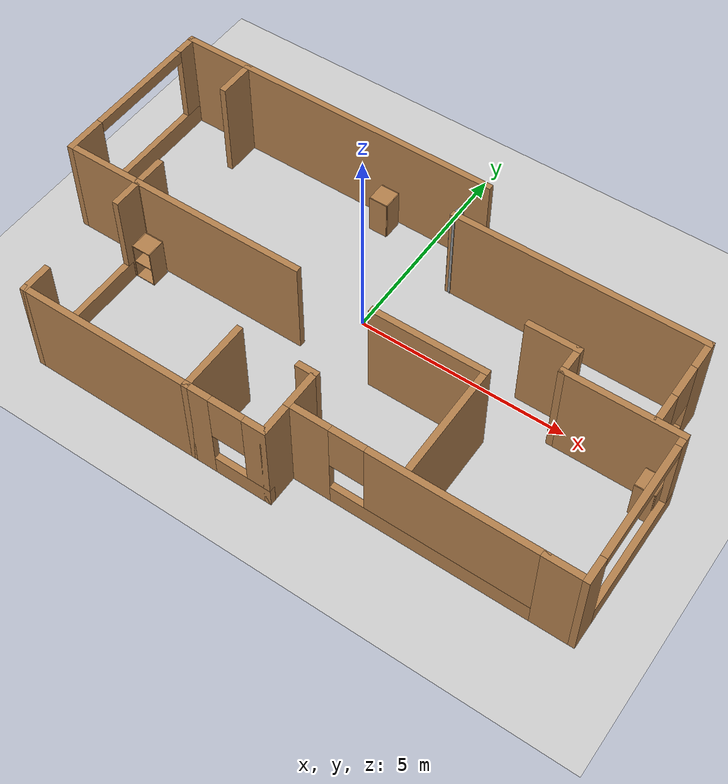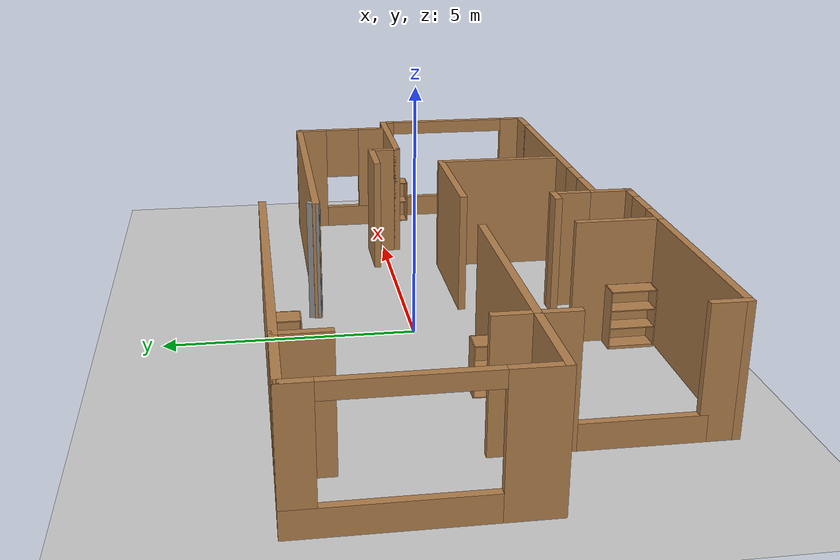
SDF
<sdf version="1.6">
 <world name="default">
  <light name="sun" type="directional">
   <pose>0 0 10 0 -0 0</pose>
   <diffuse>0.8 0.8 0.8 1</diffuse>
   <specular>0.1 0.1 0.1 1</specular>
   <attenuation>
    <range>1000</range>
    <constant>0.9</constant>
    <linear>0.01</linear>
    <quadratic>0.001</quadratic>
   </attenuation>
   <direction>-0.5 0.5 -1</direction>
  </light>
  <model name="ground_plane">
   <static>1</static>
   <link name="link">
    <collision name="collision">
     <geometry><plane><normal>0 0 1</normal><size>100 100</size></plane></geometry>
     <surface><friction><ode><mu>100</mu><mu2>50</mu2></ode></friction></surface>
    </collision>
    <visual name="visual">
     <cast_shadows>0</cast_shadows>
     <geometry><plane><normal>0 0 1</normal><size>100 100</size></plane></geometry>
     <material>
      <script><uri>file://media/materials/scripts/gazebo.material</uri><name>Gazebo/Grey</name></script>
     </material>
    </visual>
   </link>
  </model>
  <gravity>0 0 -9.8</gravity>
  <magnetic_field>6e-06 2.3e-05 -4.2e-05</magnetic_field>
  <atmosphere type="adiabatic"/>
  <physics name="default_physics" default="0" type="ode">
   <max_step_size>0.001</max_step_size>
   <real_time_factor>1</real_time_factor>
   <real_time_update_rate>1000</real_time_update_rate>
  </physics>
  <scene><ambient>0.4 0.4 0.4 1</ambient><background>0.7 0.7 0.7 1</background><shadows>1</shadows></scene>
  <spherical_coordinates>
   <surface_model>EARTH_WGS84</surface_model>
   <latitude_deg>0</latitude_deg>
   <longitude_deg>0</longitude_deg>
   <elevation>0</elevation>
   <heading_deg>0</heading_deg>
  </spherical_coordinates>
  <model name="room_small">
   <pose>0.347421 -0.866246 0 0 -0 0</pose>
   <link name="Wall_0">
    <collision name="Wall_0_Collision">
     <geometry><box><size>4.25 0.15 2.5</size></box></geometry>
     <pose>0 0 1.25 0 -0 0</pose>
    </collision>
    <visual name="Wall_0_Visual">
     <pose>0 0 1.25 0 -0 0</pose>
     <geometry><box><size>4.25 0.15 2.5</size></box></geometry>
     <material>
      <script><uri>file://media/materials/scripts/gazebo.material</uri><name>Gazebo/Wood</name></script>
      <ambient>1 1 1 1</ambient>
     </material>
    </visual>
    <pose>-3.21568 -0.309416 0 0 -0 0</pose>
   </link>
   <link name="Wall_11">
    <collision name="Wall_11_Collision">
     <geometry><box><size>1 0.15 2.5</size></box></geometry>
     <pose>0 0 1.25 0 -0 0</pose>
    </collision>
    <visual name="Wall_11_Visual">
     <pose>0 0 1.25 0 -0 0</pose>
     <geometry><box><size>1 0.15 2.5</size></box></geometry>
     <material>
      <script><uri>file://media/materials/scripts/gazebo.material</uri><name>Gazebo/Wood</name></script>
      <ambient>1 1 1 1</ambient>
     </material>
    </visual>
    <pose>6.69067 -3.04058 0 0 -0 0</pose>
   </link>
   <link name="Wall_12">
    <pose>7.11568 -1.24058 0 0 -0 1.5708</pose>
    <visual name="Wall_12_Visual_0">
     <pose>-1.56813 0 1.25 0 -0 0</pose>
     <geometry><box><size>0.613747 0.15 2.5</size></box></geometry>
     <material>
      <script><uri>file://media/materials/scripts/gazebo.material</uri><name>Gazebo/Wood</name></script>
      <ambient>1 1 1 1</ambient>
     </material>
    </visual>
    <collision name="Wall_12_Collision_0">
     <geometry><box><size>0.613747 0.15 2.5</size></box></geometry>
     <pose>-1.56813 0 1.25 0 -0 0</pose>
    </collision>
    <visual name="Wall_12_Visual_1">
     <pose>0.306873 0 0.25 0 -0 0</pose>
     <geometry><box><size>3.13625 0.15 0.5</size></box></geometry>
     <material>
      <script><uri>file://media/materials/scripts/gazebo.material</uri><name>Gazebo/Wood</name></script>
      <ambient>1 1 1 1</ambient>
     </material>
    </visual>
    <collision name="Wall_12_Collision_1">
     <geometry><box><size>3.13625 0.15 0.5</size></box></geometry>
     <pose>0.306873 0 0.25 0 -0 0</pose>
    </collision>
    <visual name="Wall_12_Visual_2">
     <pose>1.70687 0 1.5 0 -0 0</pose>
     <geometry><box><size>0.336253 0.15 2</size></box></geometry>
     <material>
      <script><uri>file://media/materials/scripts/gazebo.material</uri><name>Gazebo/Wood</name></script>
      <ambient>1 1 1 1</ambient>
     </material>
    </visual>
    <collision name="Wall_12_Collision_2">
     <geometry><box><size>0.336253 0.15 2</size></box></geometry>
     <pose>1.70687 0 1.5 0 -0 0</pose>
    </collision>
    <visual name="Wall_12_Visual_3">
     <pose>0.138747 0 2.35 0 -0 0</pose>
     <geometry><box><size>2.8 0.15 0.3</size></box></geometry>
     <material>
      <script><uri>file://media/materials/scripts/gazebo.material</uri><name>Gazebo/Wood</name></script>
      <ambient>1 1 1 1</ambient>
     </material>
    </visual>
    <collision name="Wall_12_Collision_3">
     <geometry><box><size>2.8 0.15 0.3</size></box></geometry>
     <pose>0.138747 0 2.35 0 -0 0</pose>
    </collision>
   </link>
   <link name="Wall_13">
    <collision name="Wall_13_Collision">
     <geometry><box><size>2.75 0.15 2.5</size></box></geometry>
     <pose>0 0 1.25 0 -0 0</pose>
    </collision>
    <visual name="Wall_13_Visual">
     <pose>0 0 1.25 0 -0 0</pose>
     <geometry><box><size>2.75 0.15 2.5</size></box></geometry>
     <material>
      <script><uri>file://media/materials/scripts/gazebo.material</uri><name>Gazebo/Wood</name></script>
      <ambient>1 1 1 1</ambient>
     </material>
    </visual>
    <pose>5.81567 0.559416 0 0 -0 3.14159</pose>
   </link>
   <link name="Wall_14">
    <collision name="Wall_14_Collision">
     <geometry><box><size>0.75 0.15 2.5</size></box></geometry>
     <pose>0 0 1.25 0 -0 0</pose>
    </collision>
    <visual name="Wall_14_Visual">
     <pose>0 0 1.25 0 -0 0</pose>
     <geometry><box><size>0.75 0.15 2.5</size></box></geometry>
     <material>
      <script><uri>file://media/materials/scripts/gazebo.material</uri><name>Gazebo/Wood</name></script>
      <ambient>1 1 1 1</ambient>
     </material>
    </visual>
    <pose>4.51567 0.859416 0 0 -0 1.5708</pose>
   </link>
   <link name="Wall_15">
    <collision name="Wall_15_Collision">
     <geometry><box><size>1.25 0.15 2.5</size></box></geometry>
     <pose>0 0 1.25 0 -0 0</pose>
    </collision>
    <visual name="Wall_15_Visual">
     <pose>0 0 1.25 0 -0 0</pose>
     <geometry><box><size>1.25 0.15 2.5</size></box></geometry>
     <material>
      <script><uri>file://media/materials/scripts/gazebo.material</uri><name>Gazebo/Wood</name></script>
      <ambient>1 1 1 1</ambient>
     </material>
    </visual>
    <pose>3.96568 1.15942 0 0 -0 3.14159</pose>
   </link>
   <link name="Wall_2">
    <collision name="Wall_2_Collision">
     <geometry><box><size>1.5 0.15 2.5</size></box></geometry>
     <pose>0 0 1.25 0 -0 0</pose>
    </collision>
    <visual name="Wall_2_Visual">
     <pose>0 0 1.25 0 -0 0</pose>
     <geometry><box><size>1.5 0.15 2.5</size></box></geometry>
     <material>
      <script><uri>file://media/materials/scripts/gazebo.material</uri><name>Gazebo/Wood</name></script>
      <ambient>1 1 1 1</ambient>
     </material>
    </visual>
    <pose>-5.28432 -0.30347 0 0 0 -1.5708</pose>
   </link>
   <link name="Wall_20">
    <pose>-0.259325 -3.79058 0 0 -0 0</pose>
    <visual name="Wall_20_Visual_0">
     <pose>-0.679948 0 1.25 0 -0 0</pose>
     <geometry><box><size>0.640104 0.15 2.5</size></box></geometry>
     <material>
      <script><uri>file://media/materials/scripts/gazebo.material</uri><name>Gazebo/Wood</name></script>
      <ambient>1 1 1 1</ambient>
     </material>
    </visual>
    <collision name="Wall_20_Collision_0">
     <geometry><box><size>0.640104 0.15 2.5</size></box></geometry>
     <pose>-0.679948 0 1.25 0 -0 0</pose>
    </collision>
    <visual name="Wall_20_Visual_1">
     <pose>0.320052 0 0.25 0 -0 0</pose>
     <geometry><box><size>1.3599 0.15 0.5</size></box></geometry>
     <material>
      <script><uri>file://media/materials/scripts/gazebo.material</uri><name>Gazebo/Wood</name></script>
      <ambient>1 1 1 1</ambient>
     </material>
    </visual>
    <collision name="Wall_20_Collision_1">
     <geometry><box><size>1.3599 0.15 0.5</size></box></geometry>
     <pose>0.320052 0 0.25 0 -0 0</pose>
    </collision>
    <visual name="Wall_20_Visual_2">
     <pose>0.720052 0 1.5 0 -0 0</pose>
     <geometry><box><size>0.559896 0.15 2</size></box></geometry>
     <material>
      <script><uri>file://media/materials/scripts/gazebo.material</uri><name>Gazebo/Wood</name></script>
      <ambient>1 1 1 1</ambient>
     </material>
    </visual>
    <collision name="Wall_20_Collision_2">
     <geometry><box><size>0.559896 0.15 2</size></box></geometry>
     <pose>0.720052 0 1.5 0 -0 0</pose>
    </collision>
    <visual name="Wall_20_Visual_3">
     <pose>0.040104 0 1.9 0 -0 0</pose>
     <geometry><box><size>0.8 0.15 1.2</size></box></geometry>
     <material>
      <script><uri>file://media/materials/scripts/gazebo.material</uri><name>Gazebo/Wood</name></script>
      <ambient>1 1 1 1</ambient>
     </material>
    </visual>
    <collision name="Wall_20_Collision_3">
     <geometry><box><size>0.8 0.15 1.2</size></box></geometry>
     <pose>0.040104 0 1.9 0 -0 0</pose>
    </collision>
   </link>
   <link name="Wall_21">
    <collision name="Wall_21_Collision">
     <geometry><box><size>0.9 0.15 2.5</size></box></geometry>
     <pose>0 0 1.25 0 -0 0</pose>
    </collision>
    <visual name="Wall_21_Visual">
     <pose>0 0 1.25 0 -0 0</pose>
     <geometry><box><size>0.9 0.15 2.5</size></box></geometry>
     <material>
      <script><uri>file://media/materials/scripts/gazebo.material</uri><name>Gazebo/Wood</name></script>
      <ambient>1 1 1 1</ambient>
     </material>
    </visual>
    <pose>0.665675 -3.41558 0 0 -0 1.5708</pose>
   </link>
   <link name="Wall_23">
    <pose>-5.28432 -2.08453 0 0 0 -1.5708</pose>
    <visual name="Wall_23_Visual_0">
     <pose>0 0 0.25 0 -0 0</pose>
     <geometry><box><size>2.36211 0.15 0.5</size></box></geometry>
     <material>
      <script><uri>file://media/materials/scripts/gazebo.material</uri><name>Gazebo/Wood</name></script>
      <ambient>1 1 1 1</ambient>
     </material>
    </visual>
    <collision name="Wall_23_Collision_0">
     <geometry><box><size>2.36211 0.15 0.5</size></box></geometry>
     <pose>0 0 0.25 0 -0 0</pose>
    </collision>
   </link>
   <link name="Wall_25">
    <collision name="Wall_25_Collision">
     <geometry><box><size>2.75 0.15 2.5</size></box></geometry>
     <pose>0 0 1.25 0 -0 0</pose>
    </collision>
    <visual name="Wall_25_Visual">
     <pose>0 0 1.25 0 -0 0</pose>
     <geometry><box><size>2.75 0.15 2.5</size></box></geometry>
     <material>
      <script><uri>file://media/materials/scripts/gazebo.material</uri><name>Gazebo/Wood</name></script>
      <ambient>1 1 1 1</ambient>
     </material>
    </visual>
    <pose>2.02026 -0.299258 0 0 -0 3.14159</pose>
   </link>
   <link name="Wall_27">
    <collision name="Wall_27_Collision">
     <geometry><box><size>2 0.15 2.5</size></box></geometry>
     <pose>0 0 1.25 0 -0 0</pose>
    </collision>
    <visual name="Wall_27_Visual">
     <pose>0 0 1.25 0 -0 0</pose>
     <geometry><box><size>2 0.15 2.5</size></box></geometry>
     <material>
      <script><uri>file://media/materials/scripts/gazebo.material</uri><name>Gazebo/Wood</name></script>
      <ambient>1 1 1 1</ambient>
     </material>
    </visual>
    <pose>-6.19067 -0.309416 0 0 -0 3.14159</pose>
   </link>
   <link name="Wall_28">
    <pose>-7.11568 1.74058 0 0 -0 1.5708</pose>
    <visual name="Wall_28_Visual_0">
     <pose>-1.6402 0 1.25 0 -0 0</pose>
     <geometry><box><size>0.969593 0.15 2.5</size></box></geometry>
     <material>
      <script><uri>file://media/materials/scripts/gazebo.material</uri><name>Gazebo/Wood</name></script>
      <ambient>1 1 1 1</ambient>
     </material>
    </visual>
    <collision name="Wall_28_Collision_0">
     <geometry><box><size>0.969593 0.15 2.5</size></box></geometry>
     <pose>-1.6402 0 1.25 0 -0 0</pose>
    </collision>
    <visual name="Wall_28_Visual_1">
     <pose>0.484796 0 0.25 0 -0 0</pose>
     <geometry><box><size>3.28041 0.15 0.5</size></box></geometry>
     <material>
      <script><uri>file://media/materials/scripts/gazebo.material</uri><name>Gazebo/Wood</name></script>
      <ambient>1 1 1 1</ambient>
     </material>
    </visual>
    <collision name="Wall_28_Collision_1">
     <geometry><box><size>3.28041 0.15 0.5</size></box></geometry>
     <pose>0.484796 0 0.25 0 -0 0</pose>
    </collision>
    <visual name="Wall_28_Visual_2">
     <pose>1.8348 0 1.5 0 -0 0</pose>
     <geometry><box><size>0.580407 0.15 2</size></box></geometry>
     <material>
      <script><uri>file://media/materials/scripts/gazebo.material</uri><name>Gazebo/Wood</name></script>
      <ambient>1 1 1 1</ambient>
     </material>
    </visual>
    <collision name="Wall_28_Collision_2">
     <geometry><box><size>0.580407 0.15 2</size></box></geometry>
     <pose>1.8348 0 1.5 0 -0 0</pose>
    </collision>
    <visual name="Wall_28_Visual_3">
     <pose>0.194593 0 2.35 0 -0 0</pose>
     <geometry><box><size>2.7 0.15 0.3</size></box></geometry>
     <material>
      <script><uri>file://media/materials/scripts/gazebo.material</uri><name>Gazebo/Wood</name></script>
      <ambient>1 1 1 1</ambient>
     </material>
    </visual>
    <collision name="Wall_28_Collision_3">
     <geometry><box><size>2.7 0.15 0.3</size></box></geometry>
     <pose>0.194593 0 2.35 0 -0 0</pose>
    </collision>
   </link>
   <link name="Wall_29">
    <collision name="Wall_29_Collision">
     <geometry><box><size>1.75 0.15 2.5</size></box></geometry>
     <pose>0 0 1.25 0 -0 0</pose>
    </collision>
    <visual name="Wall_29_Visual">
     <pose>0 0 1.25 0 -0 0</pose>
     <geometry><box><size>1.75 0.15 2.5</size></box></geometry>
     <material>
      <script><uri>file://media/materials/scripts/gazebo.material</uri><name>Gazebo/Wood</name></script>
      <ambient>1 1 1 1</ambient>
     </material>
    </visual>
    <pose>-6.31567 3.79058 0 0 -0 0</pose>
   </link>
   <link name="Wall_30">
    <collision name="Wall_30_Collision">
     <geometry><box><size>1 0.15 2.5</size></box></geometry>
     <pose>0 0 1.25 0 -0 0</pose>
    </collision>
    <visual name="Wall_30_Visual">
     <pose>0 0 1.25 0 -0 0</pose>
     <geometry><box><size>1 0.15 2.5</size></box></geometry>
     <material>
      <script><uri>file://media/materials/scripts/gazebo.material</uri><name>Gazebo/Wood</name></script>
      <ambient>1 1 1 1</ambient>
     </material>
    </visual>
    <pose>-5.51567 3.36558 0 0 0 -1.5708</pose>
   </link>
   <link name="Wall_32">
    <collision name="Wall_32_Collision">
     <geometry><box><size>6.5 0.15 2.5</size></box></geometry>
     <pose>0 0 1.25 0 -0 0</pose>
    </collision>
    <visual name="Wall_32_Visual">
     <pose>0 0 1.25 0 -0 0</pose>
     <geometry><box><size>6.5 0.15 2.5</size></box></geometry>
     <material>
      <script><uri>file://media/materials/scripts/gazebo.material</uri><name>Gazebo/Wood</name></script>
      <ambient>1 1 1 1</ambient>
     </material>
    </visual>
    <pose>-2.34068 3.79058 0 0 -0 0</pose>
   </link>
   <link name="Wall_34">
    <collision name="Wall_34_Collision">
     <geometry><box><size>0.25 0.15 2.5</size></box></geometry>
     <pose>0 0 1.25 0 -0 0</pose>
    </collision>
    <visual name="Wall_34_Visual">
     <pose>0 0 1.25 0 -0 0</pose>
     <geometry><box><size>0.25 0.15 2.5</size></box></geometry>
     <material>
      <script><uri>file://media/materials/scripts/gazebo.material</uri><name>Gazebo/Grey</name></script>
      <ambient>1 1 1 1</ambient>
     </material>
    </visual>
    <pose>0.693561 2.77508 0 0 0 -1.8326</pose>
   </link>
   <link name="Wall_35">
    <collision name="Wall_35_Collision">
     <geometry><box><size>6 0.15 2.5</size></box></geometry>
     <pose>0 0 1.25 0 -0 0</pose>
    </collision>
    <visual name="Wall_35_Visual">
     <pose>0 0 1.25 0 -0 0</pose>
     <geometry><box><size>6 0.15 2.5</size></box></geometry>
     <material>
      <script><uri>file://media/materials/scripts/gazebo.material</uri><name>Gazebo/Wood</name></script>
      <ambient>1 1 1 1</ambient>
     </material>
    </visual>
    <pose>3.60562 2.72678 0 0 -0 0</pose>
   </link>
   <link name="Wall_4">
    <collision name="Wall_4_Collision">
     <geometry><box><size>0.75 0.15 2.5</size></box></geometry>
     <pose>0 0 1.25 0 -0 0</pose>
    </collision>
    <visual name="Wall_4_Visual">
     <pose>0 0 1.25 0 -0 0</pose>
     <geometry><box><size>0.75 0.15 2.5</size></box></geometry>
     <material>
      <script><uri>file://media/materials/scripts/gazebo.material</uri><name>Gazebo/Wood</name></script>
      <ambient>1 1 1 1</ambient>
     </material>
    </visual>
    <pose>-5.28432 -3.49058 0 0 0 -1.5708</pose>
   </link>
   <link name="Wall_40">
    <pose>6.53062 1.67678 0 0 0 -1.5708</pose>
    <visual name="Wall_40_Visual_0">
     <pose>-0.756401 0 1.25 0 -0 0</pose>
     <geometry><box><size>0.737198 0.15 2.5</size></box></geometry>
     <material>
      <script><uri>file://media/materials/scripts/gazebo.material</uri><name>Gazebo/Wood</name></script>
      <ambient>1 1 1 1</ambient>
     </material>
    </visual>
    <collision name="Wall_40_Collision_0">
     <geometry><box><size>0.737198 0.15 2.5</size></box></geometry>
     <pose>-0.756401 0 1.25 0 -0 0</pose>
    </collision>
    <visual name="Wall_40_Visual_1">
     <pose>0.368599 0 0.25 0 -0 0</pose>
     <geometry><box><size>1.5128 0.15 0.5</size></box></geometry>
     <material>
      <script><uri>file://media/materials/scripts/gazebo.material</uri><name>Gazebo/Wood</name></script>
      <ambient>1 1 1 1</ambient>
     </material>
    </visual>
    <collision name="Wall_40_Collision_1">
     <geometry><box><size>1.5128 0.15 0.5</size></box></geometry>
     <pose>0.368599 0 0.25 0 -0 0</pose>
    </collision>
    <visual name="Wall_40_Visual_2">
     <pose>0.768599 0 1.5 0 -0 0</pose>
     <geometry><box><size>0.712802 0.15 2</size></box></geometry>
     <material>
      <script><uri>file://media/materials/scripts/gazebo.material</uri><name>Gazebo/Wood</name></script>
      <ambient>1 1 1 1</ambient>
     </material>
    </visual>
    <collision name="Wall_40_Collision_2">
     <geometry><box><size>0.712802 0.15 2</size></box></geometry>
     <pose>0.768599 0 1.5 0 -0 0</pose>
    </collision>
    <visual name="Wall_40_Visual_3">
     <pose>0.012198 0 1.9 0 -0 0</pose>
     <geometry><box><size>0.8 0.15 1.2</size></box></geometry>
     <material>
      <script><uri>file://media/materials/scripts/gazebo.material</uri><name>Gazebo/Wood</name></script>
      <ambient>1 1 1 1</ambient>
     </material>
    </visual>
    <collision name="Wall_40_Collision_3">
     <geometry><box><size>0.8 0.15 1.2</size></box></geometry>
     <pose>0.012198 0 1.9 0 -0 0</pose>
    </collision>
   </link>
   <link name="Wall_44">
    <collision name="Wall_44_Collision">
     <geometry><box><size>2.75 0.15 2.5</size></box></geometry>
     <pose>0 0 1.25 0 -0 0</pose>
    </collision>
    <visual name="Wall_44_Visual">
     <pose>0 0 1.25 0 -0 0</pose>
     <geometry><box><size>2.75 0.15 2.5</size></box></geometry>
     <material>
      <script><uri>file://media/materials/scripts/gazebo.material</uri><name>Gazebo/Wood</name></script>
      <ambient>1 1 1 1</ambient>
     </material>
    </visual>
    <pose>3.32026 -1.59926 0 0 0 -1.5708</pose>
   </link>
   <link name="Wall_48">
    <collision name="Wall_48_Collision">
     <geometry><box><size>1.75 0.15 2.5</size></box></geometry>
     <pose>0 0 1.25 0 -0 0</pose>
    </collision>
    <visual name="Wall_48_Visual">
     <pose>0 0 1.25 0 -0 0</pose>
     <geometry><box><size>1.75 0.15 2.5</size></box></geometry>
     <material>
      <script><uri>file://media/materials/scripts/gazebo.material</uri><name>Gazebo/Wood</name></script>
      <ambient>1 1 1 1</ambient>
     </material>
    </visual>
    <pose>-1.18433 -2.99058 0 0 -0 1.5708</pose>
   </link>
   <link name="Wall_5">
    <collision name="Wall_5_Collision">
     <geometry><box><size>4.25 0.15 2.5</size></box></geometry>
     <pose>0 0 1.25 0 -0 0</pose>
    </collision>
    <visual name="Wall_5_Visual">
     <pose>0 0 1.25 0 -0 0</pose>
     <geometry><box><size>4.25 0.15 2.5</size></box></geometry>
     <material>
      <script><uri>file://media/materials/scripts/gazebo.material</uri><name>Gazebo/Wood</name></script>
      <ambient>1 1 1 1</ambient>
     </material>
    </visual>
    <pose>-3.23433 -3.79058 0 0 -0 0</pose>
   </link>
   <link name="Wall_50">
    <collision name="Wall_50_Collision">
     <geometry><box><size>1 0.15 2.5</size></box></geometry>
     <pose>0 0 1.25 0 -0 0</pose>
    </collision>
    <visual name="Wall_50_Visual">
     <pose>0 0 1.25 0 -0 0</pose>
     <geometry><box><size>1 0.15 2.5</size></box></geometry>
     <material>
      <script><uri>file://media/materials/scripts/gazebo.material</uri><name>Gazebo/Wood</name></script>
      <ambient>1 1 1 1</ambient>
     </material>
    </visual>
    <pose>0.665675 -2.61558 0 0 -0 1.5708</pose>
   </link>
   <link name="Wall_51">
    <collision name="Wall_51_Collision">
     <geometry><box><size>0.5 0.15 2.5</size></box></geometry>
     <pose>0 0 1.25 0 -0 0</pose>
    </collision>
    <visual name="Wall_51_Visual">
     <pose>0 0 1.25 0 -0 0</pose>
     <geometry><box><size>0.5 0.15 2.5</size></box></geometry>
     <material>
      <script><uri>file://media/materials/scripts/gazebo.material</uri><name>Gazebo/Wood</name></script>
      <ambient>1 1 1 1</ambient>
     </material>
    </visual>
    <pose>0.490675 -2.19058 0 0 -0 3.14159</pose>
   </link>
   <link name="Wall_9">
    <pose>3.46568 -3.04058 0 0 -0 0</pose>
    <visual name="Wall_9_Visual_0">
     <pose>-2.35385 0 1.25 0 -0 0</pose>
     <geometry><box><size>1.04231 0.15 2.5</size></box></geometry>
     <material>
      <script><uri>file://media/materials/scripts/gazebo.material</uri><name>Gazebo/Wood</name></script>
      <ambient>1 1 1 1</ambient>
     </material>
    </visual>
    <collision name="Wall_9_Collision_0">
     <geometry><box><size>1.04231 0.15 2.5</size></box></geometry>
     <pose>-2.35385 0 1.25 0 -0 0</pose>
    </collision>
    <visual name="Wall_9_Visual_1">
     <pose>0.521153 0 0.25 0 -0 0</pose>
     <geometry><box><size>4.7077 0.15 0.5</size></box></geometry>
     <material>
      <script><uri>file://media/materials/scripts/gazebo.material</uri><name>Gazebo/Wood</name></script>
      <ambient>1 1 1 1</ambient>
     </material>
    </visual>
    <collision name="Wall_9_Collision_1">
     <geometry><box><size>4.7077 0.15 0.5</size></box></geometry>
     <pose>0.521153 0 0.25 0 -0 0</pose>
    </collision>
    <visual name="Wall_9_Visual_2">
     <pose>0.921153 0 1.5 0 -0 0</pose>
     <geometry><box><size>3.90769 0.15 2</size></box></geometry>
     <material>
      <script><uri>file://media/materials/scripts/gazebo.material</uri><name>Gazebo/Wood</name></script>
      <ambient>1 1 1 1</ambient>
     </material>
    </visual>
    <collision name="Wall_9_Collision_2">
     <geometry><box><size>3.90769 0.15 2</size></box></geometry>
     <pose>0.921153 0 1.5 0 -0 0</pose>
    </collision>
    <visual name="Wall_9_Visual_3">
     <pose>-1.4327 0 1.9 0 -0 0</pose>
     <geometry><box><size>0.8 0.15 1.2</size></box></geometry>
     <material>
      <script><uri>file://media/materials/scripts/gazebo.material</uri><name>Gazebo/Wood</name></script>
      <ambient>1 1 1 1</ambient>
     </material>
    </visual>
    <collision name="Wall_9_Collision_3">
     <geometry><box><size>0.8 0.15 1.2</size></box></geometry>
     <pose>-1.4327 0 1.9 0 -0 0</pose>
    </collision>
   </link>
   <static>1</static>
  </model>
  <model name="bookshelf">
   <static>1</static>
   <link name="link">
    <inertial><mass>1</mass></inertial>
    <collision name="back">
     <pose>0 0.005 0.6 0 -0 0</pose>
     <geometry><box><size>0.9 0.01 1.2</size></box></geometry>
    </collision>
    <visual name="visual1">
     <pose>0 0.005 0.6 0 -0 0</pose>
     <geometry><box><size>0.9 0.01 1.2</size></box></geometry>
     <material>
      <script><uri>file://media/materials/scripts/gazebo.material</uri><name>Gazebo/Wood</name></script>
     </material>
    </visual>
    <collision name="left_side">
     <pose>0.45 -0.195 0.6 0 -0 0</pose>
     <geometry><box><size>0.02 0.4 1.2</size></box></geometry>
    </collision>
    <visual name="visual2">
     <pose>0.45 -0.195 0.6 0 -0 0</pose>
     <geometry><box><size>0.02 0.4 1.2</size></box></geometry>
     <material>
      <script><uri>file://media/materials/scripts/gazebo.material</uri><name>Gazebo/Wood</name></script>
     </material>
    </visual>
    <collision name="right_side">
     <pose>-0.45 -0.195 0.6 0 -0 0</pose>
     <geometry><box><size>0.02 0.4 1.2</size></box></geometry>
    </collision>
    <visual name="visual3">
     <pose>-0.45 -0.195 0.6 0 -0 0</pose>
     <geometry><box><size>0.02 0.4 1.2</size></box></geometry>
     <material>
      <script><uri>file://media/materials/scripts/gazebo.material</uri><name>Gazebo/Wood</name></script>
     </material>
    </visual>
    <collision name="bottom">
     <pose>0 -0.195 0.03 0 -0 0</pose>
     <geometry><box><size>0.88 0.4 0.06</size></box></geometry>
    </collision>
    <visual name="visual4">
     <pose>0 -0.195 0.03 0 -0 0</pose>
     <geometry><box><size>0.88 0.4 0.06</size></box></geometry>
     <material>
      <script><uri>file://media/materials/scripts/gazebo.material</uri><name>Gazebo/Wood</name></script>
     </material>
    </visual>
    <collision name="top">
     <pose>0 -0.195 1.19 0 -0 0</pose>
     <geometry><box><size>0.88 0.4 0.02</size></box></geometry>
    </collision>
    <visual name="visual5">
     <pose>0 -0.195 1.19 0 -0 0</pose>
     <geometry><box><size>0.88 0.4 0.02</size></box></geometry>
     <material>
      <script><uri>file://media/materials/scripts/gazebo.material</uri><name>Gazebo/Wood</name></script>
     </material>
    </visual>
    <collision name="low_shelf">
     <pose>0 -0.195 0.43 0 -0 0</pose>
     <geometry><box><size>0.88 0.4 0.02</size></box></geometry>
    </collision>
    <visual name="visual6">
     <pose>0 -0.195 0.43 0 -0 0</pose>
     <geometry><box><size>0.88 0.4 0.02</size></box></geometry>
     <material>
      <script><uri>file://media/materials/scripts/gazebo.material</uri><name>Gazebo/Wood</name></script>
     </material>
    </visual>
    <collision name="high_shelf">
     <pose>0 -0.195 0.8 0 -0 0</pose>
     <geometry><box><size>0.88 0.4 0.02</size></box></geometry>
    </collision>
    <visual name="visual7">
     <pose>0 -0.195 0.8 0 -0 0</pose>
     <geometry><box><size>0.88 0.4 0.02</size></box></geometry>
     <material>
      <script><uri>file://media/materials/scripts/gazebo.material</uri><name>Gazebo/Wood</name></script>
     </material>
    </visual>
   </link>
   <pose>-0.943327 -4.08522 0 0 0 -1.561</pose>
  </model>
  <model name="cabinet">
   <static>1</static>
   <link name="cabinet_bottom_plate">
    <inertial>
     <pose>0 0 -1 0 -0 0</pose>
     <inertia><ixx>2.05</ixx><ixy>0</ixy><ixz>0</ixz><iyy>2.05</iyy><iyz>0</iyz><izz>2.05</izz></inertia>
     <mass>25</mass>
    </inertial>
    <collision name="cabinet_bottom_plate_geom">
     <pose>0 0 0.01 0 -0 0</pose>
     <geometry><box><size>0.45 0.45 0.02</size></box></geometry>
    </collision>
    <visual name="cabinet_bottom_plate_geom_visual">
     <pose>0 0 0.01 0 -0 0</pose>
     <geometry><box><size>0.45 0.45 0.02</size></box></geometry>
     <material>
      <script><uri>file://media/materials/scripts/gazebo.material</uri><name>Gazebo/Wood</name></script>
     </material>
    </visual>
    <collision name="cabinet_bottom_plate_geom_cabinet_back_plate">
     <pose>0.235 0 0.51 0 -0 0</pose>
     <geometry><box><size>0.02 0.45 1.02</size></box></geometry>
    </collision>
    <visual name="cabinet_bottom_plate_geom_cabinet_back_plate_visual">
     <pose>0.235 0 0.51 0 -0 0</pose>
     <geometry><box><size>0.02 0.45 1.02</size></box></geometry>
     <material>
      <script><uri>file://media/materials/scripts/gazebo.material</uri><name>Gazebo/Wood</name></script>
     </material>
    </visual>
    <collision name="cabinet_bottom_plate_geom_cabinet_left_plate">
     <pose>0 0.235 0.51 0 -0 0</pose>
     <geometry><box><size>0.45 0.02 1.02</size></box></geometry>
    </collision>
    <visual name="cabinet_bottom_plate_geom_cabinet_left_plate_visual">
     <pose>0 0.235 0.51 0 -0 0</pose>
     <geometry><box><size>0.45 0.02 1.02</size></box></geometry>
     <material>
      <script><uri>file://media/materials/scripts/gazebo.material</uri><name>Gazebo/Wood</name></script>
     </material>
    </visual>
    <collision name="cabinet_bottom_plate_geom_cabinet_middle_plate">
     <pose>0 0 0.51 0 -0 0</pose>
     <geometry><box><size>0.45 0.45 0.02</size></box></geometry>
    </collision>
    <visual name="cabinet_bottom_plate_geom_cabinet_middle_plate_visual">
     <pose>0 0 0.51 0 -0 0</pose>
     <geometry><box><size>0.45 0.45 0.02</size></box></geometry>
     <material>
      <script><uri>file://media/materials/scripts/gazebo.material</uri><name>Gazebo/Wood</name></script>
     </material>
    </visual>
    <collision name="cabinet_bottom_plate_geom_cabinet_right_plate">
     <pose>0 -0.235 0.51 0 -0 0</pose>
     <geometry><box><size>0.45 0.02 1.02</size></box></geometry>
    </collision>
    <visual name="cabinet_bottom_plate_geom_cabinet_right_plate_visual">
     <pose>0 -0.235 0.51 0 -0 0</pose>
     <geometry><box><size>0.45 0.02 1.02</size></box></geometry>
     <material>
      <script><uri>file://media/materials/scripts/gazebo.material</uri><name>Gazebo/Wood</name></script>
     </material>
    </visual>
    <collision name="cabinet_bottom_plate_geom_cabinet_top_plate">
     <pose>0 0 1.01 0 -0 0</pose>
     <geometry><box><size>0.45 0.45 0.02</size></box></geometry>
    </collision>
    <visual name="cabinet_bottom_plate_geom_cabinet_top_plate_visual">
     <pose>0 0 1.01 0 -0 0</pose>
     <geometry><box><size>0.45 0.45 0.02</size></box></geometry>
     <material>
      <script><uri>file://media/materials/scripts/gazebo.material</uri><name>Gazebo/Wood</name></script>
     </material>
    </visual>
   </link>
   <pose>-1.20636 2.56872 0 0 -0 0</pose>
  </model>
  <model name="cabinet_0">
   <static>1</static>
   <link name="cabinet_bottom_plate">
    <inertial>
     <pose>0 0 -1 0 -0 0</pose>
     <inertia><ixx>2.05</ixx><ixy>0</ixy><ixz>0</ixz><iyy>2.05</iyy><iyz>0</iyz><izz>2.05</izz></inertia>
     <mass>25</mass>
    </inertial>
    <collision name="cabinet_bottom_plate_geom">
     <pose>0 0 0.01 0 -0 0</pose>
     <geometry><box><size>0.45 0.45 0.02</size></box></geometry>
    </collision>
    <visual name="cabinet_bottom_plate_geom_visual">
     <pose>0 0 0.01 0 -0 0</pose>
     <geometry><box><size>0.45 0.45 0.02</size></box></geometry>
     <material>
      <script><uri>file://media/materials/scripts/gazebo.material</uri><name>Gazebo/Wood</name></script>
     </material>
    </visual>
    <collision name="cabinet_bottom_plate_geom_cabinet_back_plate">
     <pose>0.235 0 0.51 0 -0 0</pose>
     <geometry><box><size>0.02 0.45 1.02</size></box></geometry>
    </collision>
    <visual name="cabinet_bottom_plate_geom_cabinet_back_plate_visual">
     <pose>0.235 0 0.51 0 -0 0</pose>
     <geometry><box><size>0.02 0.45 1.02</size></box></geometry>
     <material>
      <script><uri>file://media/materials/scripts/gazebo.material</uri><name>Gazebo/Wood</name></script>
     </material>
    </visual>
    <collision name="cabinet_bottom_plate_geom_cabinet_left_plate">
     <pose>0 0.235 0.51 0 -0 0</pose>
     <geometry><box><size>0.45 0.02 1.02</size></box></geometry>
    </collision>
    <visual name="cabinet_bottom_plate_geom_cabinet_left_plate_visual">
     <pose>0 0.235 0.51 0 -0 0</pose>
     <geometry><box><size>0.45 0.02 1.02</size></box></geometry>
     <material>
      <script><uri>file://media/materials/scripts/gazebo.material</uri><name>Gazebo/Wood</name></script>
     </material>
    </visual>
    <collision name="cabinet_bottom_plate_geom_cabinet_middle_plate">
     <pose>0 0 0.51 0 -0 0</pose>
     <geometry><box><size>0.45 0.45 0.02</size></box></geometry>
    </collision>
    <visual name="cabinet_bottom_plate_geom_cabinet_middle_plate_visual">
     <pose>0 0 0.51 0 -0 0</pose>
     <geometry><box><size>0.45 0.45 0.02</size></box></geometry>
     <material>
      <script><uri>file://media/materials/scripts/gazebo.material</uri><name>Gazebo/Wood</name></script>
     </material>
    </visual>
    <collision name="cabinet_bottom_plate_geom_cabinet_right_plate">
     <pose>0 -0.235 0.51 0 -0 0</pose>
     <geometry><box><size>0.45 0.02 1.02</size></box></geometry>
    </collision>
    <visual name="cabinet_bottom_plate_geom_cabinet_right_plate_visual">
     <pose>0 -0.235 0.51 0 -0 0</pose>
     <geometry><box><size>0.45 0.02 1.02</size></box></geometry>
     <material>
      <script><uri>file://media/materials/scripts/gazebo.material</uri><name>Gazebo/Wood</name></script>
     </material>
    </visual>
    <collision name="cabinet_bottom_plate_geom_cabinet_top_plate">
     <pose>0 0 1.01 0 -0 0</pose>
     <geometry><box><size>0.45 0.45 0.02</size></box></geometry>
    </collision>
    <visual name="cabinet_bottom_plate_geom_cabinet_top_plate_visual">
     <pose>0 0 1.01 0 -0 0</pose>
     <geometry><box><size>0.45 0.45 0.02</size></box></geometry>
     <material>
      <script><uri>file://media/materials/scripts/gazebo.material</uri><name>Gazebo/Wood</name></script>
     </material>
    </visual>
   </link>
   <pose>7.15328 -0.61998 0 0 -0 0</pose>
  </model>
  <model name="cabinet_1">
   <static>1</static>
   <link name="cabinet_bottom_plate">
    <inertial>
     <pose>0 0 -1 0 -0 0</pose>
     <inertia><ixx>2.05</ixx><ixy>0</ixy><ixz>0</ixz><iyy>2.05</iyy><iyz>0</iyz><izz>2.05</izz></inertia>
     <mass>25</mass>
    </inertial>
    <collision name="cabinet_bottom_plate_geom">
     <pose>0 0 0.01 0 -0 0</pose>
     <geometry><box><size>0.45 0.45 0.02</size></box></geometry>
    </collision>
    <visual name="cabinet_bottom_plate_geom_visual">
     <pose>0 0 0.01 0 -0 0</pose>
     <geometry><box><size>0.45 0.45 0.02</size></box></geometry>
     <material>
      <script><uri>file://media/materials/scripts/gazebo.material</uri><name>Gazebo/Wood</name></script>
     </material>
    </visual>
    <collision name="cabinet_bottom_plate_geom_cabinet_back_plate">
     <pose>0.235 0 0.51 0 -0 0</pose>
     <geometry><box><size>0.02 0.45 1.02</size></box></geometry>
    </collision>
    <visual name="cabinet_bottom_plate_geom_cabinet_back_plate_visual">
     <pose>0.235 0 0.51 0 -0 0</pose>
     <geometry><box><size>0.02 0.45 1.02</size></box></geometry>
     <material>
      <script><uri>file://media/materials/scripts/gazebo.material</uri><name>Gazebo/Wood</name></script>
     </material>
    </visual>
    <collision name="cabinet_bottom_plate_geom_cabinet_left_plate">
     <pose>0 0.235 0.51 0 -0 0</pose>
     <geometry><box><size>0.45 0.02 1.02</size></box></geometry>
    </collision>
    <visual name="cabinet_bottom_plate_geom_cabinet_left_plate_visual">
     <pose>0 0.235 0.51 0 -0 0</pose>
     <geometry><box><size>0.45 0.02 1.02</size></box></geometry>
     <material>
      <script><uri>file://media/materials/scripts/gazebo.material</uri><name>Gazebo/Wood</name></script>
     </material>
    </visual>
    <collision name="cabinet_bottom_plate_geom_cabinet_middle_plate">
     <pose>0 0 0.51 0 -0 0</pose>
     <geometry><box><size>0.45 0.45 0.02</size></box></geometry>
    </collision>
    <visual name="cabinet_bottom_plate_geom_cabinet_middle_plate_visual">
     <pose>0 0 0.51 0 -0 0</pose>
     <geometry><box><size>0.45 0.45 0.02</size></box></geometry>
     <material>
      <script><uri>file://media/materials/scripts/gazebo.material</uri><name>Gazebo/Wood</name></script>
     </material>
    </visual>
    <collision name="cabinet_bottom_plate_geom_cabinet_right_plate">
     <pose>0 -0.235 0.51 0 -0 0</pose>
     <geometry><box><size>0.45 0.02 1.02</size></box></geometry>
    </collision>
    <visual name="cabinet_bottom_plate_geom_cabinet_right_plate_visual">
     <pose>0 -0.235 0.51 0 -0 0</pose>
     <geometry><box><size>0.45 0.02 1.02</size></box></geometry>
     <material>
      <script><uri>file://media/materials/scripts/gazebo.material</uri><name>Gazebo/Wood</name></script>
     </material>
    </visual>
    <collision name="cabinet_bottom_plate_geom_cabinet_top_plate">
     <pose>0 0 1.01 0 -0 0</pose>
     <geometry><box><size>0.45 0.45 0.02</size></box></geometry>
    </collision>
    <visual name="cabinet_bottom_plate_geom_cabinet_top_plate_visual">
     <pose>0 0 1.01 0 -0 0</pose>
     <geometry><box><size>0.45 0.45 0.02</size></box></geometry>
     <material>
      <script><uri>file://media/materials/scripts/gazebo.material</uri><name>Gazebo/Wood</name></script>
     </material>
    </visual>
   </link>
   <pose>-2.75814 -0.854352 0 0 -0 0</pose>
  </model>
  <model name="cabinet_2">
   <static>1</static>
   <link name="cabinet_bottom_plate">
    <inertial>
     <pose>0 0 -1 0 -0 0</pose>
     <inertia><ixx>2.05</ixx><ixy>0</ixy><ixz>0</ixz><iyy>2.05</iyy><iyz>0</iyz><izz>2.05</izz></inertia>
     <mass>25</mass>
    </inertial>
    <collision name="cabinet_bottom_plate_geom">
     <pose>0 0 0.01 0 -0 0</pose>
     <geometry><box><size>0.45 0.45 0.02</size></box></geometry>
    </collision>
    <visual name="cabinet_bottom_plate_geom_visual">
     <pose>0 0 0.01 0 -0 0</pose>
     <geometry><box><size>0.45 0.45 0.02</size></box></geometry>
     <material>
      <script><uri>file://media/materials/scripts/gazebo.material</uri><name>Gazebo/Wood</name></script>
     </material>
    </visual>
    <collision name="cabinet_bottom_plate_geom_cabinet_back_plate">
     <pose>0.235 0 0.51 0 -0 0</pose>
     <geometry><box><size>0.02 0.45 1.02</size></box></geometry>
    </collision>
    <visual name="cabinet_bottom_plate_geom_cabinet_back_plate_visual">
     <pose>0.235 0 0.51 0 -0 0</pose>
     <geometry><box><size>0.02 0.45 1.02</size></box></geometry>
     <material>
      <script><uri>file://media/materials/scripts/gazebo.material</uri><name>Gazebo/Wood</name></script>
     </material>
    </visual>
    <collision name="cabinet_bottom_plate_geom_cabinet_left_plate">
     <pose>0 0.235 0.51 0 -0 0</pose>
     <geometry><box><size>0.45 0.02 1.02</size></box></geometry>
    </collision>
    <visual name="cabinet_bottom_plate_geom_cabinet_left_plate_visual">
     <pose>0 0.235 0.51 0 -0 0</pose>
     <geometry><box><size>0.45 0.02 1.02</size></box></geometry>
     <material>
      <script><uri>file://media/materials/scripts/gazebo.material</uri><name>Gazebo/Wood</name></script>
     </material>
    </visual>
    <collision name="cabinet_bottom_plate_geom_cabinet_middle_plate">
     <pose>0 0 0.51 0 -0 0</pose>
     <geometry><box><size>0.45 0.45 0.02</size></box></geometry>
    </collision>
    <visual name="cabinet_bottom_plate_geom_cabinet_middle_plate_visual">
     <pose>0 0 0.51 0 -0 0</pose>
     <geometry><box><size>0.45 0.45 0.02</size></box></geometry>
     <material>
      <script><uri>file://media/materials/scripts/gazebo.material</uri><name>Gazebo/Wood</name></script>
     </material>
    </visual>
    <collision name="cabinet_bottom_plate_geom_cabinet_right_plate">
     <pose>0 -0.235 0.51 0 -0 0</pose>
     <geometry><box><size>0.45 0.02 1.02</size></box></geometry>
    </collision>
    <visual name="cabinet_bottom_plate_geom_cabinet_right_plate_visual">
     <pose>0 -0.235 0.51 0 -0 0</pose>
     <geometry><box><size>0.45 0.02 1.02</size></box></geometry>
     <material>
      <script><uri>file://media/materials/scripts/gazebo.material</uri><name>Gazebo/Wood</name></script>
     </material>
    </visual>
    <collision name="cabinet_bottom_plate_geom_cabinet_top_plate">
     <pose>0 0 1.01 0 -0 0</pose>
     <geometry><box><size>0.45 0.45 0.02</size></box></geometry>
    </collision>
    <visual name="cabinet_bottom_plate_geom_cabinet_top_plate_visual">
     <pose>0 0 1.01 0 -0 0</pose>
     <geometry><box><size>0.45 0.45 0.02</size></box></geometry>
     <material>
      <script><uri>file://media/materials/scripts/gazebo.material</uri><name>Gazebo/Wood</name></script>
     </material>
    </visual>
   </link>
   <pose>-4.61089 -1.51499 0 0 -0 1.57189</pose>
  </model>
 </world>
</sdf>
